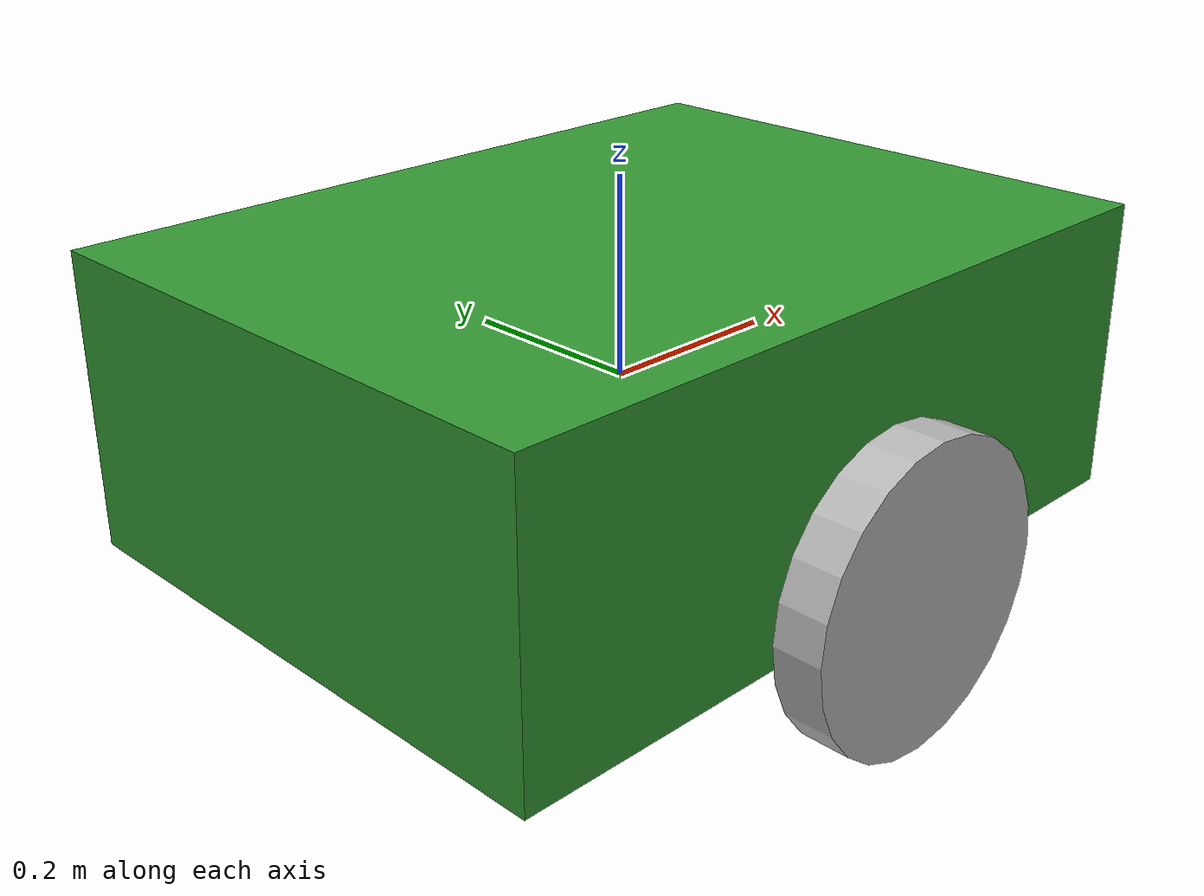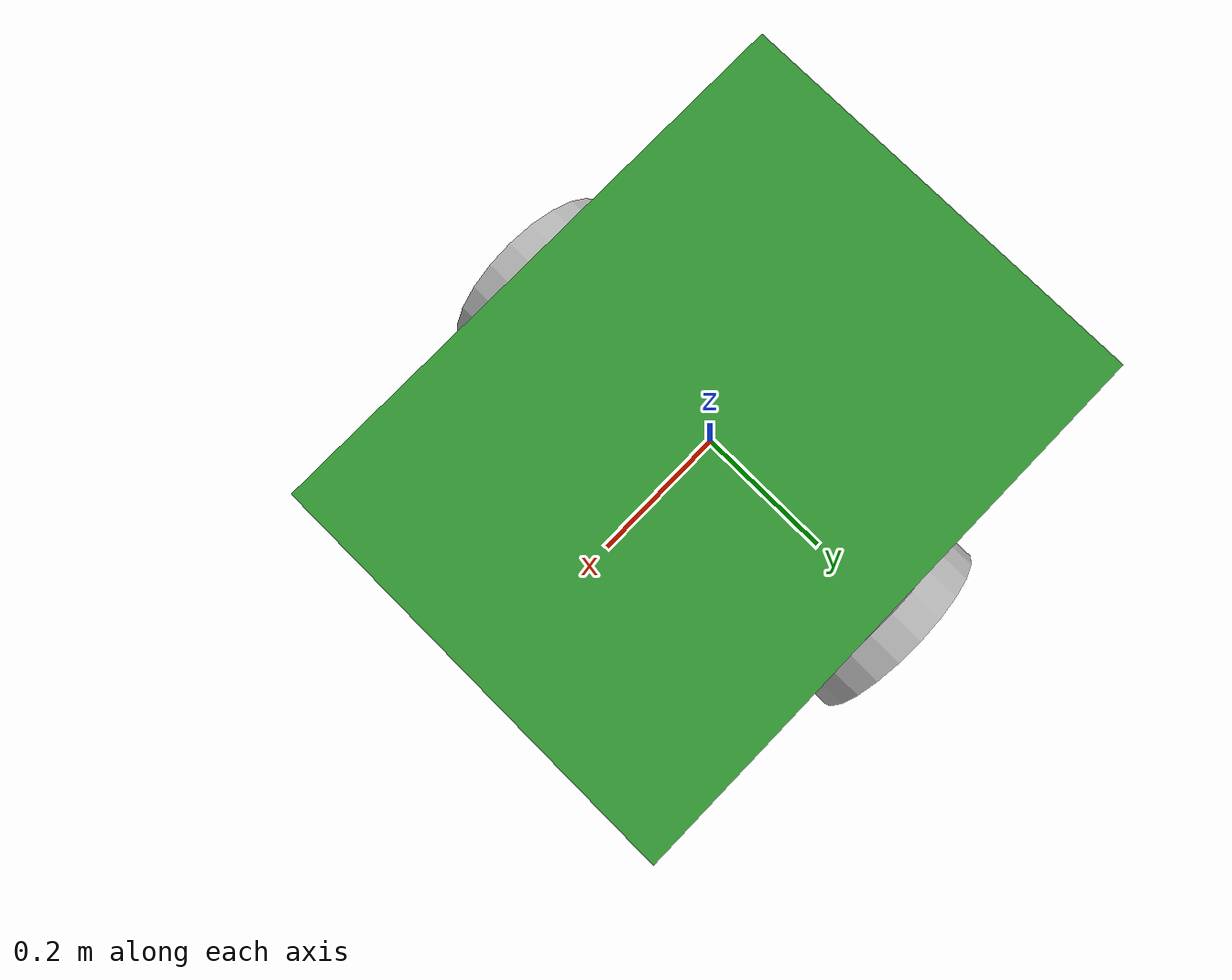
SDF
<?xml version="1.0"?>
<sdf version="1.9">
  <model name="ugv_mothership">
    <pose>0 0 0 0 0 0</pose>
    <link name="chassis">
      <inertial><mass>40.0</mass>
        <inertia><ixx>0.5</ixx><iyy>0.8</iyy><izz>1.0</izz></inertia>
      </inertial>
      <collision name="col">
        <geometry><box><size>0.8 0.6 0.3</size></box></geometry>
      </collision>
      <visual name="vis">
        <geometry><box><size>0.8 0.6 0.3</size></box></geometry>
        <material><ambient>0.2 0.6 0.2 1</ambient></material>
      </visual>
    </link>
    <link name="left_wheel">
      <pose>0 0.35 -0.1 1.5708 0 0</pose>
      <inertial><mass>2.0</mass><inertia><ixx>0.01</ixx><iyy>0.01</iyy><izz>0.01</izz></inertia></inertial>
      <collision name="col"><geometry><cylinder><radius>0.15</radius><length>0.05</length></cylinder></geometry></collision>
      <visual name="vis"><geometry><cylinder><radius>0.15</radius><length>0.05</length></cylinder></geometry></visual>
    </link>
    <link name="right_wheel">
      <pose>0 -0.35 -0.1 1.5708 0 0</pose>
      <inertial><mass>2.0</mass><inertia><ixx>0.01</ixx><iyy>0.01</iyy><izz>0.01</izz></inertia></inertial>
      <collision name="col"><geometry><cylinder><radius>0.15</radius><length>0.05</length></cylinder></geometry></collision>
      <visual name="vis"><geometry><cylinder><radius>0.15</radius><length>0.05</length></cylinder></geometry></visual>
    </link>
  </model>
</sdf>
